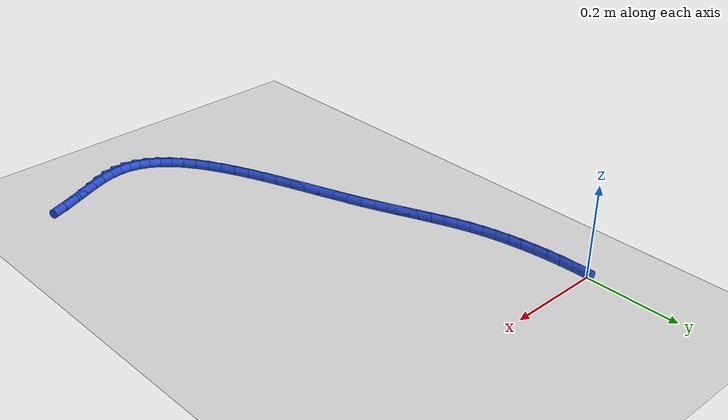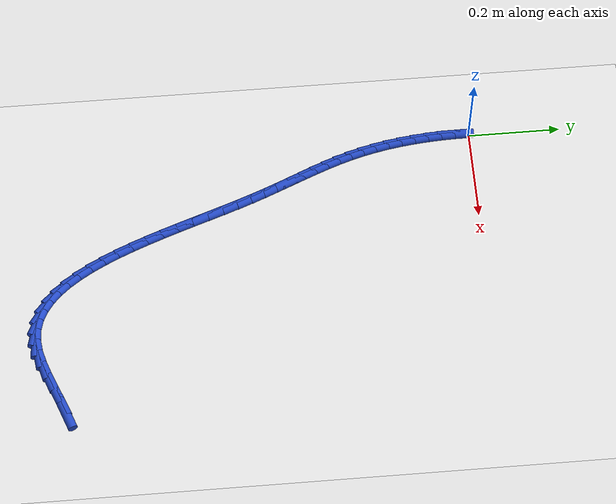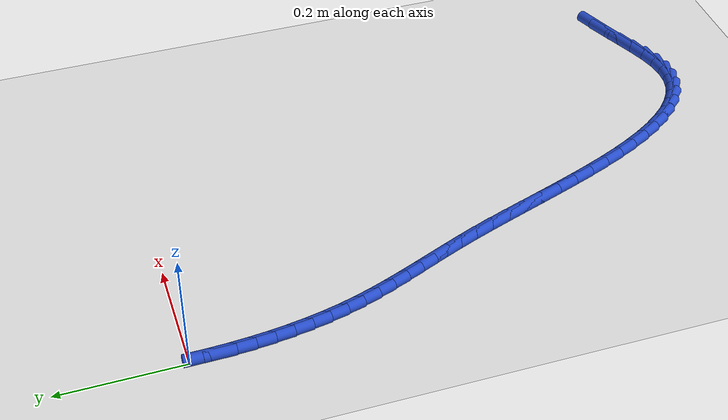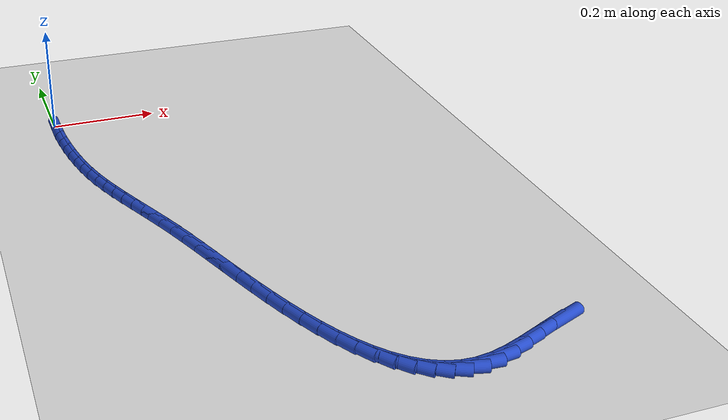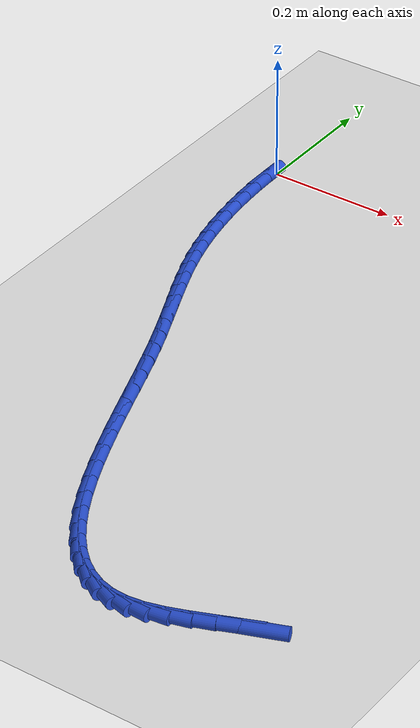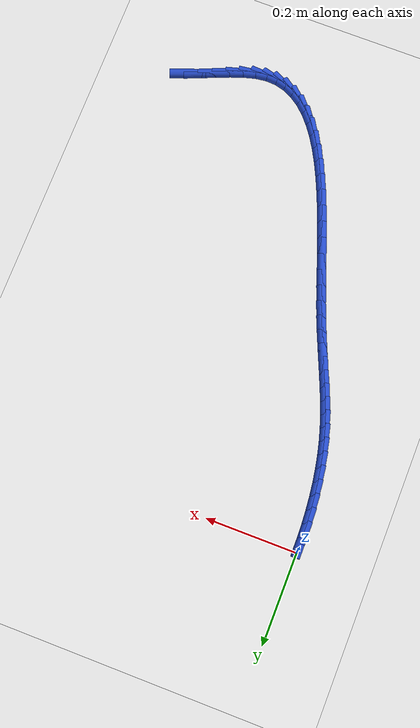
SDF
<sdf version="1.6">
 <world name="default">
  <model name="ground_plane">
   <static>1</static>
   <link name="link">
    <collision name="collision">
     <geometry><plane><normal>0 0 1</normal><size>100 100</size></plane></geometry>
     <surface><friction><ode><mu>100</mu><mu2>50</mu2></ode></friction></surface>
    </collision>
    <visual name="visual">
     <cast_shadows>0</cast_shadows>
     <geometry><plane><normal>0 0 1</normal><size>100 100</size></plane></geometry>
     <material>
      <script><uri>file://media/materials/scripts/gazebo.material</uri><name>Gazebo/WhiteGlow</name></script>
     </material>
    </visual>
   </link>
  </model>
  <model name="line">
   <link name="link_208">
    <pose>0.5958837599183413 -0.9026547521025216 0.01 0 1.57 0.36269542694233003</pose>
    <collision name="collision">
     <geometry><cylinder><radius>0.01</radius><length>0.08</length></cylinder></geometry>
    </collision>
    <visual name="visual">
     <material>
      <script><name>Gazebo/Blue</name><uri>file://media/materials/scripts/gazebo.material</uri></script>
     </material>
     <geometry><cylinder><radius>0.01</radius><length>0.08</length></cylinder></geometry>
    </visual>
   </link>
   <link name="link_209">
    <pose>0.5667261422986648 -0.913719580970735 0.01 0 1.57 0.3918459266696157</pose>
    <collision name="collision">
     <geometry><cylinder><radius>0.01</radius><length>0.08</length></cylinder></geometry>
    </collision>
    <visual name="visual">
     <material>
      <script><name>Gazebo/Blue</name><uri>file://media/materials/scripts/gazebo.material</uri></script>
     </material>
     <geometry><cylinder><radius>0.01</radius><length>0.08</length></cylinder></geometry>
    </visual>
   </link>
   <link name="link_210">
    <pose>0.5375046740552222 -0.9257943119102975 0.01 0 1.57 0.3873471983328539</pose>
    <collision name="collision">
     <geometry><cylinder><radius>0.01</radius><length>0.08</length></cylinder></geometry>
    </collision>
    <visual name="visual">
     <material>
      <script><name>Gazebo/Blue</name><uri>file://media/materials/scripts/gazebo.material</uri></script>
     </material>
     <geometry><cylinder><radius>0.01</radius><length>0.08</length></cylinder></geometry>
    </visual>
   </link>
   <link name="link_211">
    <pose>0.508566380669208 -0.937599898511087 0.01 0 1.57 0.3476331021287551</pose>
    <collision name="collision">
     <geometry><cylinder><radius>0.01</radius><length>0.08</length></cylinder></geometry>
    </collision>
    <visual name="visual">
     <material>
      <script><name>Gazebo/Blue</name><uri>file://media/materials/scripts/gazebo.material</uri></script>
     </material>
     <geometry><cylinder><radius>0.01</radius><length>0.08</length></cylinder></geometry>
    </visual>
   </link>
   <link name="link_212">
    <pose>0.48025828762181605 -0.9478572943629815 0.01 0 1.57 0.2654442704008711</pose>
    <collision name="collision">
     <geometry><cylinder><radius>0.01</radius><length>0.08</length></cylinder></geometry>
    </collision>
    <visual name="visual">
     <material>
      <script><name>Gazebo/Blue</name><uri>file://media/materials/scripts/gazebo.material</uri></script>
     </material>
     <geometry><cylinder><radius>0.01</radius><length>0.08</length></cylinder></geometry>
    </visual>
   </link>
   <link name="link_213">
    <pose>0.45292742039424005 -0.9552874530558587 0.01 0 1.57 0.12740261668183014</pose>
    <collision name="collision">
     <geometry><cylinder><radius>0.01</radius><length>0.08</length></cylinder></geometry>
    </collision>
    <visual name="visual">
     <material>
      <script><name>Gazebo/Blue</name><uri>file://media/materials/scripts/gazebo.material</uri></script>
     </material>
     <geometry><cylinder><radius>0.01</radius><length>0.08</length></cylinder></geometry>
    </visual>
   </link>
   <link name="link_214">
    <pose>0.4269187199163813 -0.9586190747467069 0.01 0 1.57 -0.05985910743005415</pose>
    <collision name="collision">
     <geometry><cylinder><radius>0.01</radius><length>0.08</length></cylinder></geometry>
    </collision>
    <visual name="visual">
     <material>
      <script><name>Gazebo/Blue</name><uri>file://media/materials/scripts/gazebo.material</uri></script>
     </material>
     <geometry><cylinder><radius>0.01</radius><length>0.08</length></cylinder></geometry>
    </visual>
   </link>
   <link name="link_215">
    <pose>0.4024236871216867 -0.9571510701862267 0.01 0 1.57 -0.2554412658751149</pose>
    <collision name="collision">
     <geometry><cylinder><radius>0.01</radius><length>0.08</length></cylinder></geometry>
    </collision>
    <visual name="visual">
     <material>
      <script><name>Gazebo/Blue</name><uri>file://media/materials/scripts/gazebo.material</uri></script>
     </material>
     <geometry><cylinder><radius>0.01</radius><length>0.08</length></cylinder></geometry>
    </visual>
   </link>
   <link name="link_216">
    <pose>0.379378064044876 -0.9511327961421931 0.01 0 1.57 -0.4407688305237348</pose>
    <collision name="collision">
     <geometry><cylinder><radius>0.01</radius><length>0.08</length></cylinder></geometry>
    </collision>
    <visual name="visual">
     <material>
      <script><name>Gazebo/Blue</name><uri>file://media/materials/scripts/gazebo.material</uri></script>
     </material>
     <geometry><cylinder><radius>0.01</radius><length>0.08</length></cylinder></geometry>
    </visual>
   </link>
   <link name="link_217">
    <pose>0.3576933545283839 -0.9409036828595211 0.01 0 1.57 -0.6045151559897588</pose>
    <collision name="collision">
     <geometry><cylinder><radius>0.01</radius><length>0.08</length></cylinder></geometry>
    </collision>
    <visual name="visual">
     <material>
      <script><name>Gazebo/Blue</name><uri>file://media/materials/scripts/gazebo.material</uri></script>
     </material>
     <geometry><cylinder><radius>0.01</radius><length>0.08</length></cylinder></geometry>
    </visual>
   </link>
   <link name="link_218">
    <pose>0.3372810624146461 -0.9268031605831263 0.01 0 1.57 -0.7421307695871505</pose>
    <collision name="collision">
     <geometry><cylinder><radius>0.01</radius><length>0.08</length></cylinder></geometry>
    </collision>
    <visual name="visual">
     <material>
      <script><name>Gazebo/Blue</name><uri>file://media/materials/scripts/gazebo.material</uri></script>
     </material>
     <geometry><cylinder><radius>0.01</radius><length>0.08</length></cylinder></geometry>
    </visual>
   </link>
   <link name="link_219">
    <pose>0.3180526915460973 -0.9091706595579238 0.01 0 1.57 -0.8543912125198571</pose>
    <collision name="collision">
     <geometry><cylinder><radius>0.01</radius><length>0.08</length></cylinder></geometry>
    </collision>
    <visual name="visual">
     <material>
      <script><name>Gazebo/Blue</name><uri>file://media/materials/scripts/gazebo.material</uri></script>
     </material>
     <geometry><cylinder><radius>0.01</radius><length>0.08</length></cylinder></geometry>
    </visual>
   </link>
   <link name="link_220">
    <pose>0.2999197457651727 -0.8883456100288287 0.01 0 1.57 -0.944614476330186</pose>
    <collision name="collision">
     <geometry><cylinder><radius>0.01</radius><length>0.08</length></cylinder></geometry>
    </collision>
    <visual name="visual">
     <material>
      <script><name>Gazebo/Blue</name><uri>file://media/materials/scripts/gazebo.material</uri></script>
     </material>
     <geometry><cylinder><radius>0.01</radius><length>0.08</length></cylinder></geometry>
    </visual>
   </link>
   <link name="link_221">
    <pose>0.2827937289143075 -0.8646674422407566 0.01 0 1.57 -1.0166661079614538</pose>
    <collision name="collision">
     <geometry><cylinder><radius>0.01</radius><length>0.08</length></cylinder></geometry>
    </collision>
    <visual name="visual">
     <material>
      <script><name>Gazebo/Blue</name><uri>file://media/materials/scripts/gazebo.material</uri></script>
     </material>
     <geometry><cylinder><radius>0.01</radius><length>0.08</length></cylinder></geometry>
    </visual>
   </link>
   <link name="link_222">
    <pose>0.26658614483593673 -0.8384755864386224 0.01 0 1.57 -1.0740283207323695</pose>
    <collision name="collision">
     <geometry><cylinder><radius>0.01</radius><length>0.08</length></cylinder></geometry>
    </collision>
    <visual name="visual">
     <material>
      <script><name>Gazebo/Blue</name><uri>file://media/materials/scripts/gazebo.material</uri></script>
     </material>
     <geometry><cylinder><radius>0.01</radius><length>0.08</length></cylinder></geometry>
    </visual>
   </link>
   <link name="link_223">
    <pose>0.2512084973724955 -0.8101094728673416 0.01 0 1.57 -1.119522163151143</pose>
    <collision name="collision">
     <geometry><cylinder><radius>0.01</radius><length>0.08</length></cylinder></geometry>
    </collision>
    <visual name="visual">
     <material>
      <script><name>Gazebo/Blue</name><uri>file://media/materials/scripts/gazebo.material</uri></script>
     </material>
     <geometry><cylinder><radius>0.01</radius><length>0.08</length></cylinder></geometry>
    </visual>
   </link>
   <link name="link_224">
    <pose>0.23657229036641902 -0.7799085317718294 0.01 0 1.57 -1.1553152168260912</pose>
    <collision name="collision">
     <geometry><cylinder><radius>0.01</radius><length>0.08</length></cylinder></geometry>
    </collision>
    <visual name="visual">
     <material>
      <script><name>Gazebo/Blue</name><uri>file://media/materials/scripts/gazebo.material</uri></script>
     </material>
     <geometry><cylinder><radius>0.01</radius><length>0.08</length></cylinder></geometry>
    </visual>
   </link>
   <link name="link_225">
    <pose>0.22258902766014232 -0.748212193397001 0.01 0 1.57 -1.1830191822690088</pose>
    <collision name="collision">
     <geometry><cylinder><radius>0.01</radius><length>0.08</length></cylinder></geometry>
    </collision>
    <visual name="visual">
     <material>
      <script><name>Gazebo/Blue</name><uri>file://media/materials/scripts/gazebo.material</uri></script>
     </material>
     <geometry><cylinder><radius>0.01</radius><length>0.08</length></cylinder></geometry>
    </visual>
   </link>
   <link name="link_226">
    <pose>0.2091702130961005 -0.7153598879877714 0.01 0 1.57 -1.203795653520368</pose>
    <collision name="collision">
     <geometry><cylinder><radius>0.01</radius><length>0.08</length></cylinder></geometry>
    </collision>
    <visual name="visual">
     <material>
      <script><name>Gazebo/Blue</name><uri>file://media/materials/scripts/gazebo.material</uri></script>
     </material>
     <geometry><cylinder><radius>0.01</radius><length>0.08</length></cylinder></geometry>
    </visual>
   </link>
   <link name="link_227">
    <pose>0.19622735051672874 -0.6816910457890563 0.01 0 1.57 -1.2184424772497653</pose>
    <collision name="collision">
     <geometry><cylinder><radius>0.01</radius><length>0.08</length></cylinder></geometry>
    </collision>
    <visual name="visual">
     <material>
      <script><name>Gazebo/Blue</name><uri>file://media/materials/scripts/gazebo.material</uri></script>
     </material>
     <geometry><cylinder><radius>0.01</radius><length>0.08</length></cylinder></geometry>
    </visual>
   </link>
   <link name="link_228">
    <pose>0.18367194376446205 -0.6475450970457707 0.01 0 1.57 -1.2274543577589068</pose>
    <collision name="collision">
     <geometry><cylinder><radius>0.01</radius><length>0.08</length></cylinder></geometry>
    </collision>
    <visual name="visual">
     <material>
      <script><name>Gazebo/Blue</name><uri>file://media/materials/scripts/gazebo.material</uri></script>
     </material>
     <geometry><cylinder><radius>0.01</radius><length>0.08</length></cylinder></geometry>
    </visual>
   </link>
   <link name="link_229">
    <pose>0.17141549668173575 -0.6132614720028301 0.01 0 1.57 -1.2310579420610817</pose>
    <collision name="collision">
     <geometry><cylinder><radius>0.01</radius><length>0.08</length></cylinder></geometry>
    </collision>
    <visual name="visual">
     <material>
      <script><name>Gazebo/Blue</name><uri>file://media/materials/scripts/gazebo.material</uri></script>
     </material>
     <geometry><cylinder><radius>0.01</radius><length>0.08</length></cylinder></geometry>
    </visual>
   </link>
   <link name="link_230">
    <pose>0.15936951311098477 -0.5791796009051495 0.01 0 1.57 -1.229222163220661</pose>
    <collision name="collision">
     <geometry><cylinder><radius>0.01</radius><length>0.08</length></cylinder></geometry>
    </collision>
    <visual name="visual">
     <material>
      <script><name>Gazebo/Blue</name><uri>file://media/materials/scripts/gazebo.material</uri></script>
     </material>
     <geometry><cylinder><radius>0.01</radius><length>0.08</length></cylinder></geometry>
    </visual>
   </link>
   <link name="link_231">
    <pose>0.1474454968946443 -0.5456389139976443 0.01 0 1.57 -1.2216425883954063</pose>
    <collision name="collision">
     <geometry><cylinder><radius>0.01</radius><length>0.08</length></cylinder></geometry>
    </collision>
    <visual name="visual">
     <material>
      <script><name>Gazebo/Blue</name><uri>file://media/materials/scripts/gazebo.material</uri></script>
     </material>
     <geometry><cylinder><radius>0.01</radius><length>0.08</length></cylinder></geometry>
    </visual>
   </link>
   <link name="link_232">
    <pose>0.13555495187514943 -0.5129788415252297 0.01 0 1.57 -1.2076949154434944</pose>
    <collision name="collision">
     <geometry><cylinder><radius>0.01</radius><length>0.08</length></cylinder></geometry>
    </collision>
    <visual name="visual">
     <material>
      <script><name>Gazebo/Blue</name><uri>file://media/materials/scripts/gazebo.material</uri></script>
     </material>
     <geometry><cylinder><radius>0.01</radius><length>0.08</length></cylinder></geometry>
    </visual>
   </link>
   <link name="link_233">
    <pose>0.1236093819082948 -0.48153881369785606 0.01 0 1.57 -1.1887028546835954</pose>
    <collision name="collision">
     <geometry><cylinder><radius>0.01</radius><length>0.08</length></cylinder></geometry>
    </collision>
    <visual name="visual">
     <material>
      <script><name>Gazebo/Blue</name><uri>file://media/materials/scripts/gazebo.material</uri></script>
     </material>
     <geometry><cylinder><radius>0.01</radius><length>0.08</length></cylinder></geometry>
    </visual>
   </link>
   <link name="link_234">
    <pose>0.11156017156719854 -0.45155388353430237 0.01 0 1.57 -1.1734723812140222</pose>
    <collision name="collision">
     <geometry><cylinder><radius>0.01</radius><length>0.08</length></cylinder></geometry>
    </collision>
    <visual name="visual">
     <material>
      <script><name>Gazebo/Blue</name><uri>file://media/materials/scripts/gazebo.material</uri></script>
     </material>
     <geometry><cylinder><radius>0.01</radius><length>0.08</length></cylinder></geometry>
    </visual>
   </link>
   <link name="link_235">
    <pose>0.09951491642663879 -0.4228502632230535 0.01 0 1.57 -1.165121832059333</pose>
    <collision name="collision">
     <geometry><cylinder><radius>0.01</radius><length>0.08</length></cylinder></geometry>
    </collision>
    <visual name="visual">
     <material>
      <script><name>Gazebo/Blue</name><uri>file://media/materials/scripts/gazebo.material</uri></script>
     </material>
     <geometry><cylinder><radius>0.01</radius><length>0.08</length></cylinder></geometry>
    </visual>
   </link>
   <link name="link_236">
    <pose>0.0876194539635937 -0.3951540769249816 0.01 0 1.57 -1.1645135388233676</pose>
    <collision name="collision">
     <geometry><cylinder><radius>0.01</radius><length>0.08</length></cylinder></geometry>
    </collision>
    <visual name="visual">
     <material>
      <script><name>Gazebo/Blue</name><uri>file://media/materials/scripts/gazebo.material</uri></script>
     </material>
     <geometry><cylinder><radius>0.01</radius><length>0.08</length></cylinder></geometry>
    </visual>
   </link>
   <link name="link_237">
    <pose>0.07601962165504149 -0.3681914488009589 0.01 0 1.57 -1.1722985722269057</pose>
    <collision name="collision">
     <geometry><cylinder><radius>0.01</radius><length>0.08</length></cylinder></geometry>
    </collision>
    <visual name="visual">
     <material>
      <script><name>Gazebo/Blue</name><uri>file://media/materials/scripts/gazebo.material</uri></script>
     </material>
     <geometry><cylinder><radius>0.01</radius><length>0.08</length></cylinder></geometry>
    </visual>
   </link>
   <link name="link_238">
    <pose>0.06486125697796032 -0.3416885030118577 0.01 0 1.57 -1.1888428059426517</pose>
    <collision name="collision">
     <geometry><cylinder><radius>0.01</radius><length>0.08</length></cylinder></geometry>
    </collision>
    <visual name="visual">
     <material>
      <script><name>Gazebo/Blue</name><uri>file://media/materials/scripts/gazebo.material</uri></script>
     </material>
     <geometry><cylinder><radius>0.01</radius><length>0.08</length></cylinder></geometry>
    </visual>
   </link>
   <link name="link_239">
    <pose>0.05429019740932833 -0.31537136371855007 0.01 0 1.57 -1.2141534975965236</pose>
    <collision name="collision">
     <geometry><cylinder><radius>0.01</radius><length>0.08</length></cylinder></geometry>
    </collision>
    <visual name="visual">
     <material>
      <script><name>Gazebo/Blue</name><uri>file://media/materials/scripts/gazebo.material</uri></script>
     </material>
     <geometry><cylinder><radius>0.01</radius><length>0.08</length></cylinder></geometry>
    </visual>
   </link>
   <link name="link_240">
    <pose>0.044452280426123994 -0.2889661550819091 0.01 0 1.57 -1.2478172669230327</pose>
    <collision name="collision">
     <geometry><cylinder><radius>0.01</radius><length>0.08</length></cylinder></geometry>
    </collision>
    <visual name="visual">
     <material>
      <script><name>Gazebo/Blue</name><uri>file://media/materials/scripts/gazebo.material</uri></script>
     </material>
     <geometry><cylinder><radius>0.01</radius><length>0.08</length></cylinder></geometry>
    </visual>
   </link>
   <link name="link_241">
    <pose>0.03549334350532492 -0.26219900126280554 0.01 0 1.57 -1.2887573847411273</pose>
    <collision name="collision">
     <geometry><cylinder><radius>0.01</radius><length>0.08</length></cylinder></geometry>
    </collision>
    <visual name="visual">
     <material>
      <script><name>Gazebo/Blue</name><uri>file://media/materials/scripts/gazebo.material</uri></script>
     </material>
     <geometry><cylinder><radius>0.01</radius><length>0.08</length></cylinder></geometry>
    </visual>
   </link>
   <link name="link_242">
    <pose>0.027555387898374563 -0.23480436772156363 0.01 0 1.57 -1.3312832233348713</pose>
    <collision name="collision">
     <geometry><cylinder><radius>0.01</radius><length>0.08</length></cylinder></geometry>
    </collision>
    <visual name="visual">
     <material>
      <script><name>Gazebo/Blue</name><uri>file://media/materials/scripts/gazebo.material</uri></script>
     </material>
     <geometry><cylinder><radius>0.01</radius><length>0.08</length></cylinder></geometry>
    </visual>
   </link>
   <link name="link_243">
    <pose>0.02069361372947591 -0.2067054560051647 0.01 0 1.57 -1.3707945410917113</pose>
    <collision name="collision">
     <geometry><cylinder><radius>0.01</radius><length>0.08</length></cylinder></geometry>
    </collision>
    <visual name="visual">
     <material>
      <script><name>Gazebo/Blue</name><uri>file://media/materials/scripts/gazebo.material</uri></script>
     </material>
     <geometry><cylinder><radius>0.01</radius><length>0.08</length></cylinder></geometry>
    </visual>
   </link>
   <link name="link_244">
    <pose>0.014877208208219537 -0.17801248989661533 0.01 0 1.57 -1.4075141352580014</pose>
    <collision name="collision">
     <geometry><cylinder><radius>0.01</radius><length>0.08</length></cylinder></geometry>
    </collision>
    <visual name="visual">
     <material>
      <script><name>Gazebo/Blue</name><uri>file://media/materials/scripts/gazebo.material</uri></script>
     </material>
     <geometry><cylinder><radius>0.01</radius><length>0.08</length></cylinder></geometry>
    </visual>
   </link>
   <link name="link_245">
    <pose>0.01007167996529887 -0.14884369169930564 0.01 0 1.57 -1.4418307632863065</pose>
    <collision name="collision">
     <geometry><cylinder><radius>0.01</radius><length>0.08</length></cylinder></geometry>
    </collision>
    <visual name="visual">
     <material>
      <script><name>Gazebo/Blue</name><uri>file://media/materials/scripts/gazebo.material</uri></script>
     </material>
     <geometry><cylinder><radius>0.01</radius><length>0.08</length></cylinder></geometry>
    </visual>
   </link>
   <link name="link_246">
    <pose>0.006242537631407295 -0.11931728371662552 0.01 0 1.57 -1.4740999889006619</pose>
    <collision name="collision">
     <geometry><cylinder><radius>0.01</radius><length>0.08</length></cylinder></geometry>
    </collision>
    <visual name="visual">
     <material>
      <script><name>Gazebo/Blue</name><uri>file://media/materials/scripts/gazebo.material</uri></script>
     </material>
     <geometry><cylinder><radius>0.01</radius><length>0.08</length></cylinder></geometry>
    </visual>
   </link>
   <link name="link_247">
    <pose>0.0033552898372382206 -0.08955148825196496 0.01 0 1.57 -1.5046485447535147</pose>
    <collision name="collision">
     <geometry><cylinder><radius>0.01</radius><length>0.08</length></cylinder></geometry>
    </collision>
    <visual name="visual">
     <material>
      <script><name>Gazebo/Blue</name><uri>file://media/materials/scripts/gazebo.material</uri></script>
     </material>
     <geometry><cylinder><radius>0.01</radius><length>0.08</length></cylinder></geometry>
    </visual>
   </link>
   <link name="link_248">
    <pose>0.0013754452134850433 -0.05966452760871381 0.01 0 1.57 -1.533779573365765</pose>
    <collision name="collision">
     <geometry><cylinder><radius>0.01</radius><length>0.08</length></cylinder></geometry>
    </collision>
    <visual name="visual">
     <material>
      <script><name>Gazebo/Blue</name><uri>file://media/materials/scripts/gazebo.material</uri></script>
     </material>
     <geometry><cylinder><radius>0.01</radius><length>0.08</length></cylinder></geometry>
    </visual>
   </link>
   <link name="link_249">
    <pose>0.000268512390841167 -0.029774624090262124 0.01 0 1.57 -1.5617784090117008</pose>
    <collision name="collision">
     <geometry><cylinder><radius>0.01</radius><length>0.08</length></cylinder></geometry>
    </collision>
    <visual name="visual">
     <material>
      <script><name>Gazebo/Blue</name><uri>file://media/materials/scripts/gazebo.material</uri></script>
     </material>
     <geometry><cylinder><radius>0.01</radius><length>0.08</length></cylinder></geometry>
    </visual>
   </link>
  </model>
 </world>
</sdf>
